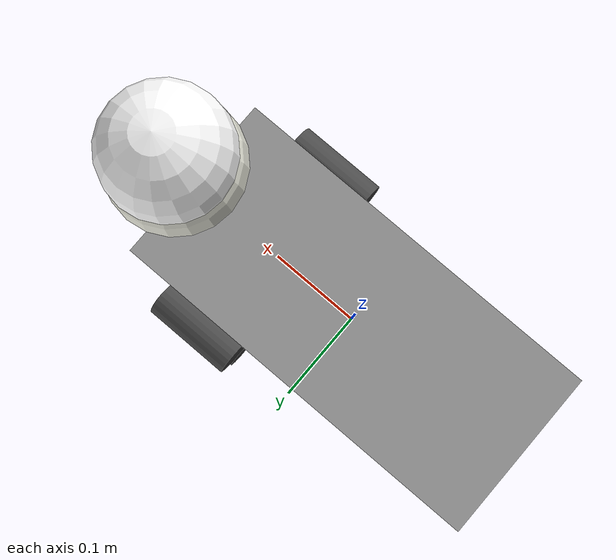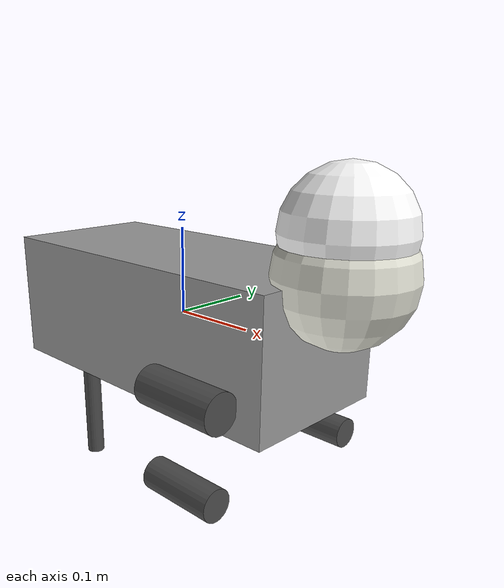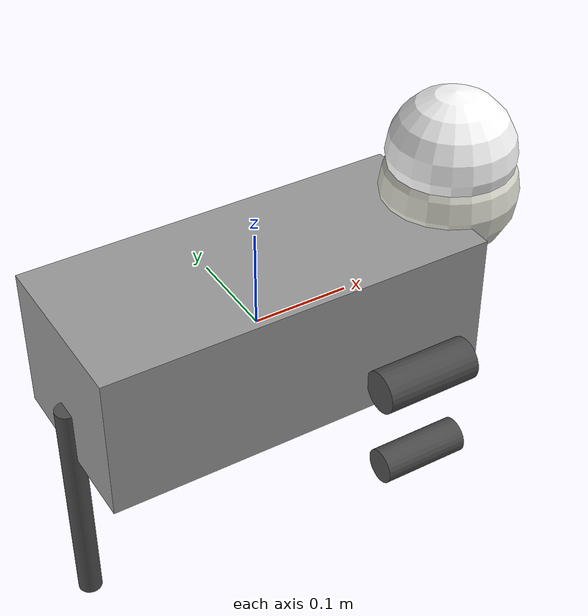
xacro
<?xml version="1.0"?>
<robot xmlns:xacro="http://www.ros.org/wiki/xacro" name="ai_cat">

  <!-- ====================== 参数定义 ====================== -->
  <xacro:property name="PI" value="3.1415926535897931" />
  <xacro:property name="body_length" value="0.40" />   <!-- 前后长 -->
  <xacro:property name="body_width"  value="0.18" />
  <xacro:property name="body_height" value="0.15" />

  <xacro:property name="leg_upper_len" value="0.10" />
  <xacro:property name="leg_lower_len" value="0.09" />

  <xacro:property name="head_offset_x" value="0.22" />
  <xacro:property name="tail_offset_x" value="-0.20" />

  <!-- ====================== 材料 ====================== -->
  <link name="base_link">
    <visual>
      <geometry>
        <box size="${body_length} ${body_width} ${body_height}"/>
      </geometry>
      <material name="gray">
        <color rgba="0.6 0.6 0.6 1.0"/>
      </material>
    </visual>
    <collision>
      <geometry>
        <box size="${body_length} ${body_width} ${body_height}"/>
      </geometry>
    </collision>
    <inertial>
      <mass value="2.5"/>
      <inertia ixx="0.08" ixy="0.0" ixz="0.0" iyy="0.04" iyz="0.0" izz="0.09"/>
    </inertial>
  </link>

  <!-- 前右腿 (right front) - 对称，y取负 -->
<xacro:macro name="front_leg" params="side sign">
    <!-- sign = 1 for left, -1 for right → 用于 y 方向镜像 -->

    <joint name="${side}_shoulder_pitch" type="revolute">
      <parent link="base_link"/>
      <child  link="${side}_upper_leg"/>
      <origin xyz="0.12 ${sign * 0.11} -0.04" rpy="0 0 0"/>
      <axis xyz="0 1 0"/>
      <limit lower="-1.57" upper="1.57" effort="20" velocity="3.0"/>
    </joint>

    <link name="${side}_upper_leg">
      <visual>
        <origin rpy="0 1.57 0"/>
        <geometry><cylinder length="${leg_upper_len}" radius="0.022"/></geometry>
        <material name="dark_gray"><color rgba="0.3 0.3 0.3 1"/></material>
      </visual>
      <collision>
        <geometry><cylinder length="${leg_upper_len}" radius="0.022"/></geometry>
      </collision>
      <!-- 可选：添加 inertial -->
      <inertial>
        <mass value="0.25"/>
        <inertia ixx="0.001" ixy="0" ixz="0" iyy="0.001" iyz="0" izz="0.0002"/>
      </inertial>
    </link>

    <joint name="${side}_elbow_pitch" type="revolute">
      <parent link="${side}_upper_leg"/>
      <child  link="${side}_lower_leg"/>
      <origin xyz="0 0 -${leg_upper_len}" rpy="0 0 0"/>
      <axis xyz="0 1 0"/>
      <limit lower="-1.8" upper="0.8" effort="15" velocity="4.0"/>
    </joint>

    <link name="${side}_lower_leg">
      <visual>
        <origin rpy="0 1.57 0"/>
        <geometry><cylinder length="${leg_lower_len}" radius="0.018"/></geometry>
        <material name="dark_gray"/>
      </visual>
      <collision>
        <geometry><cylinder length="${leg_lower_len}" radius="0.018"/></geometry>
      </collision>
      <inertial>
        <mass value="0.18"/>
        <inertia ixx="0.0006" ixy="0" ixz="0" iyy="0.0006" iyz="0" izz="0.0001"/>
      </inertial>
    </link>

  </xacro:macro>

  <!-- 实际调用：左腿 sign=1，右腿 sign=-1 -->
  <xacro:front_leg side="lf" sign="1" />
  <xacro:front_leg side="rf" sign="-1" />

  <!-- ====================== 头部 ====================== -->
  <joint name="neck_pitch" type="revolute">
    <parent link="base_link"/>
    <child  link="head_base"/>
    <origin xyz="${head_offset_x} 0 0.08" rpy="0 0 0"/>
    <axis xyz="0 1 0"/>
    <limit lower="-0.8" upper="0.6" effort="10" velocity="2.5"/>
  </joint>

  <link name="head_base">
    <visual>
      <geometry><sphere radius="0.07"/></geometry>
      <material name="light_gray"><color rgba="0.9 0.9 0.85 1"/></material>
    </visual>
  </link>

  <joint name="neck_yaw" type="continuous">
    <parent link="head_base"/>
    <child  link="head"/>
    <origin xyz="0 0 0.04" rpy="0 0 0"/>
    <axis xyz="0 0 1"/>
    <limit effort="8" velocity="3.0"/>
  </joint>

  <link name="head">
    <visual>
      <geometry><sphere radius="0.065"/></geometry>
      <material name="white"><color rgba="1 1 1 1"/></material>
    </visual>
  </link>

  <!-- ====================== 尾巴 ====================== -->
  <joint name="tail_base" type="revolute">
    <parent link="base_link"/>
    <child  link="tail"/>
    <origin xyz="${tail_offset_x} 0 -0.02" rpy="0 0 0"/>
    <axis xyz="0 1 0"/>
    <limit lower="-1.2" upper="1.2" effort="5" velocity="5.0"/>
  </joint>

  <link name="tail">
    <visual>
      <origin xyz="0 0 -0.12"/>
      <geometry><cylinder length="0.24" radius="0.012"/></geometry>
      <material name="dark_gray"/>
    </visual>
  </link>

</robot>
